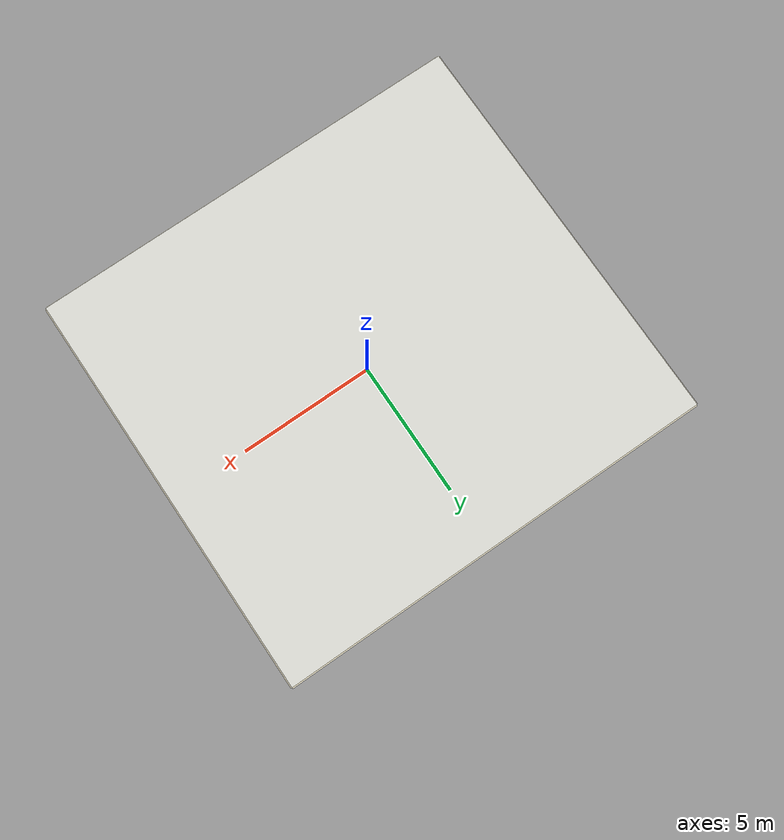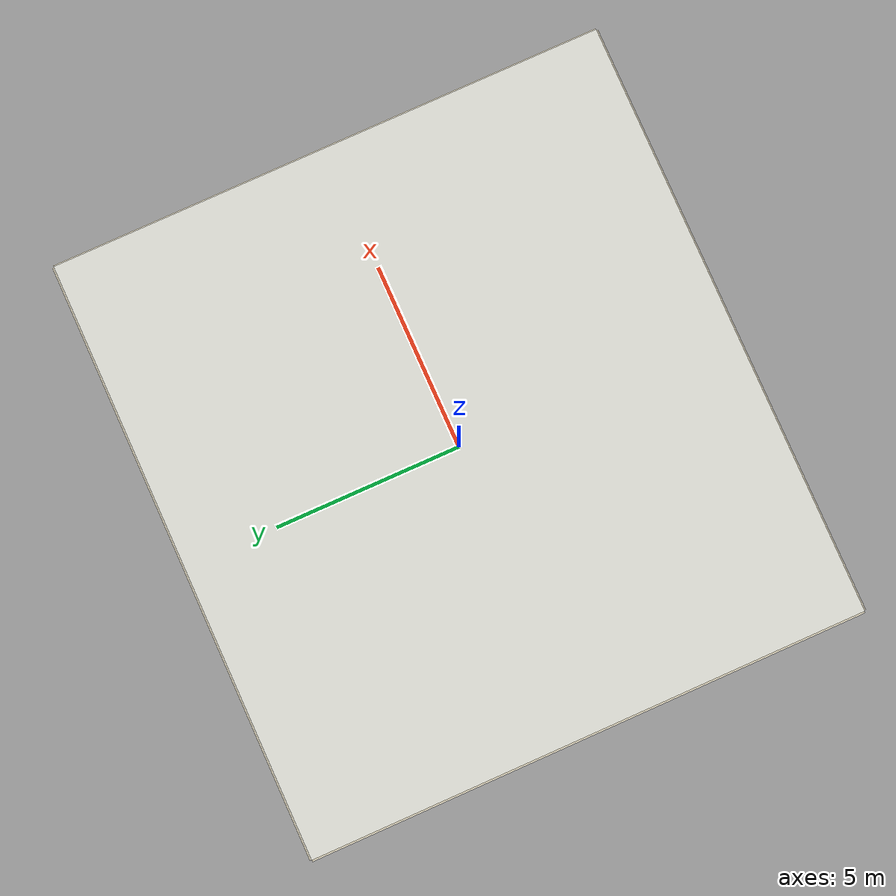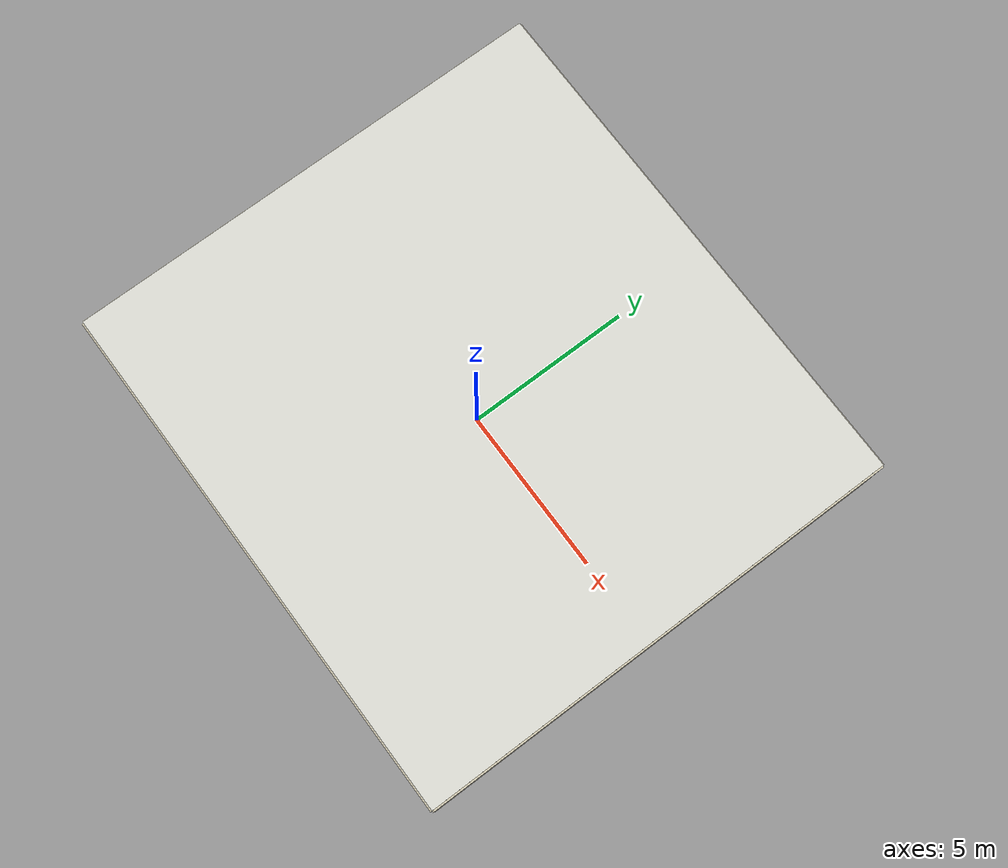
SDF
<?xml version="1.0" ?>
<sdf version='1.7'>
  <world name='default'>
    <plugin name='gazebo_ros_state' filename='libgazebo_ros_state.so'>
      <ros>
        <namespace>/</namespace>
      </ros>
      <update_rate>1000.0</update_rate>
    </plugin>

    <light name='sun' type='directional'>
      <cast_shadows>1</cast_shadows>
      <pose>0 0 10 0 -0 0</pose>
      <diffuse>0.32 0.32 0.31 1</diffuse>
      <specular>0.2 0.2 0.2 1</specular>
      <attenuation>
        <range>1000</range>
        <constant>0.9</constant>
        <linear>0.01</linear>
        <quadratic>0.001</quadratic>
      </attenuation>
      <direction>0.05 0.02 -1.0</direction>
      <spot>
        <inner_angle>0</inner_angle>
        <outer_angle>0</outer_angle>
        <falloff>0</falloff>
      </spot>
    </light>
    <model name='ground_plane'>
      <static>1</static>
      <link name='link'>
        <collision name='collision'>
          <geometry>
            <plane>
              <normal>0 0 1</normal>
              <size>100 100</size>
            </plane>
          </geometry>
          <surface>
            <friction>
              <ode>
                <mu>100</mu>
                <mu2>50</mu2>
              </ode>
              <torsional>
                <ode/>
              </torsional>
            </friction>
            <contact>
              <ode/>
            </contact>
            <bounce/>
          </surface>
          <max_contacts>10</max_contacts>
        </collision>
        <self_collide>0</self_collide>
        <enable_wind>0</enable_wind>
        <kinematic>0</kinematic>
      </link>
    </model>
    <gravity>0 0 -9.8</gravity>
    <magnetic_field>6e-06 2.3e-05 -4.2e-05</magnetic_field>
    <atmosphere type='adiabatic'/>
    <physics type='ode'>
      <max_step_size>0.001</max_step_size>
      <real_time_factor>1</real_time_factor>
      <real_time_update_rate>1000</real_time_update_rate>
    </physics>
    <scene>
      <ambient>0.68 0.68 0.66 1</ambient>
      <background>0.80 0.77 0.68 1</background>
      <shadows>1</shadows>
    </scene>
    <audio>
      <device>default</device>
    </audio>
    <wind/>
    <spherical_coordinates>
      <surface_model>EARTH_WGS84</surface_model>
      <latitude_deg>0</latitude_deg>
      <longitude_deg>0</longitude_deg>
      <elevation>0</elevation>
      <heading_deg>0</heading_deg>
    </spherical_coordinates>
    <model name='lab_17'>
    <static>1</static>
    <pose>0 0 0.001 0 0 0</pose>
    <link name='floor'>
      <visual name='floor_visual'>
        <cast_shadows>0</cast_shadows>
        <geometry><mesh><uri>model://lab_17/meshes/floor.obj</uri></mesh></geometry>
      </visual>
    </link>
    <link name='ducts'>
      <visual name='ducts_visual'>
        <geometry><mesh><uri>model://lab_17/meshes/ducts.obj</uri></mesh></geometry>
      </visual>
      <collision name='ducts_collision'>
        <geometry><mesh><uri>model://lab_17/meshes/ducts.obj</uri></mesh></geometry>
      </collision>
    </link>
    <link name='wall_0'>
      <pose>-0.017 7.280 1.350 0 0 0.000</pose>
      <visual name='wall_0_visual'>
        <cast_shadows>0</cast_shadows>
        <geometry><box><size>15.514 0.100 2.700</size></box></geometry>
        <material><ambient>0.80 0.77 0.68 1</ambient><diffuse>0.80 0.77 0.68 1</diffuse></material>
      </visual>
    </link>
    <link name='wall_1'>
      <pose>-0.017 -7.116 1.350 0 0 0.000</pose>
      <visual name='wall_1_visual'>
        <cast_shadows>0</cast_shadows>
        <geometry><box><size>15.514 0.100 2.700</size></box></geometry>
        <material><ambient>0.80 0.77 0.68 1</ambient><diffuse>0.80 0.77 0.68 1</diffuse></material>
      </visual>
    </link>
    <link name='wall_2'>
      <pose>-7.774 0.082 1.350 0 0 0.000</pose>
      <visual name='wall_2_visual'>
        <cast_shadows>0</cast_shadows>
        <geometry><box><size>0.100 14.396 2.700</size></box></geometry>
        <material><ambient>0.80 0.77 0.68 1</ambient><diffuse>0.80 0.77 0.68 1</diffuse></material>
      </visual>
    </link>
    <link name='wall_3'>
      <pose>7.740 0.082 1.350 0 0 0.000</pose>
      <visual name='wall_3_visual'>
        <cast_shadows>0</cast_shadows>
        <geometry><box><size>0.100 14.396 2.700</size></box></geometry>
        <material><ambient>0.80 0.77 0.68 1</ambient><diffuse>0.80 0.77 0.68 1</diffuse></material>
      </visual>
    </link>
    <link name='ceiling'>
      <pose>-0.017 0.082 2.750 0 0 0.000</pose>
      <visual name='ceiling_visual'>
        <cast_shadows>0</cast_shadows>
        <geometry><box><size>15.514 14.396 0.100</size></box></geometry>
        <material><ambient>0.85 0.85 0.82 1</ambient><diffuse>0.85 0.85 0.82 1</diffuse></material>
      </visual>
    </link>
    <link name='panel_0_0'>
      <pose>-6.274 -5.616 2.690 0 0 0.000</pose>
      <visual name='panel_0_0_visual'>
        <cast_shadows>0</cast_shadows>
        <geometry><box><size>1.200 0.600 0.020</size></box></geometry>
        <material><ambient>1.00 1.00 1.00 1</ambient><diffuse>1.00 1.00 1.00 1</diffuse><emissive>1.00 1.00 1.00 1</emissive></material>
      </visual>
    </link>
    <link name='panel_0_1'>
      <pose>-6.274 -3.216 2.690 0 0 0.000</pose>
      <visual name='panel_0_1_visual'>
        <cast_shadows>0</cast_shadows>
        <geometry><box><size>1.200 0.600 0.020</size></box></geometry>
        <material><ambient>1.00 1.00 1.00 1</ambient><diffuse>1.00 1.00 1.00 1</diffuse><emissive>1.00 1.00 1.00 1</emissive></material>
      </visual>
    </link>
    <link name='panel_0_2'>
      <pose>-6.274 -0.816 2.690 0 0 0.000</pose>
      <visual name='panel_0_2_visual'>
        <cast_shadows>0</cast_shadows>
        <geometry><box><size>1.200 0.600 0.020</size></box></geometry>
        <material><ambient>1.00 1.00 1.00 1</ambient><diffuse>1.00 1.00 1.00 1</diffuse><emissive>1.00 1.00 1.00 1</emissive></material>
      </visual>
    </link>
    <link name='panel_0_3'>
      <pose>-6.274 1.584 2.690 0 0 0.000</pose>
      <visual name='panel_0_3_visual'>
        <cast_shadows>0</cast_shadows>
        <geometry><box><size>1.200 0.600 0.020</size></box></geometry>
        <material><ambient>1.00 1.00 1.00 1</ambient><diffuse>1.00 1.00 1.00 1</diffuse><emissive>1.00 1.00 1.00 1</emissive></material>
      </visual>
    </link>
    <link name='panel_0_4'>
      <pose>-6.274 3.984 2.690 0 0 0.000</pose>
      <visual name='panel_0_4_visual'>
        <cast_shadows>0</cast_shadows>
        <geometry><box><size>1.200 0.600 0.020</size></box></geometry>
        <material><ambient>1.00 1.00 1.00 1</ambient><diffuse>1.00 1.00 1.00 1</diffuse><emissive>1.00 1.00 1.00 1</emissive></material>
      </visual>
    </link>
    <link name='panel_1_0'>
      <pose>-3.874 -5.616 2.690 0 0 0.000</pose>
      <visual name='panel_1_0_visual'>
        <cast_shadows>0</cast_shadows>
        <geometry><box><size>1.200 0.600 0.020</size></box></geometry>
        <material><ambient>1.00 1.00 1.00 1</ambient><diffuse>1.00 1.00 1.00 1</diffuse><emissive>1.00 1.00 1.00 1</emissive></material>
      </visual>
    </link>
    <link name='panel_1_1'>
      <pose>-3.874 -3.216 2.690 0 0 0.000</pose>
      <visual name='panel_1_1_visual'>
        <cast_shadows>0</cast_shadows>
        <geometry><box><size>1.200 0.600 0.020</size></box></geometry>
        <material><ambient>1.00 1.00 1.00 1</ambient><diffuse>1.00 1.00 1.00 1</diffuse><emissive>1.00 1.00 1.00 1</emissive></material>
      </visual>
    </link>
    <link name='panel_1_2'>
      <pose>-3.874 -0.816 2.690 0 0 0.000</pose>
      <visual name='panel_1_2_visual'>
        <cast_shadows>0</cast_shadows>
        <geometry><box><size>1.200 0.600 0.020</size></box></geometry>
        <material><ambient>1.00 1.00 1.00 1</ambient><diffuse>1.00 1.00 1.00 1</diffuse><emissive>1.00 1.00 1.00 1</emissive></material>
      </visual>
    </link>
    <link name='panel_1_3'>
      <pose>-3.874 1.584 2.690 0 0 0.000</pose>
      <visual name='panel_1_3_visual'>
        <cast_shadows>0</cast_shadows>
        <geometry><box><size>1.200 0.600 0.020</size></box></geometry>
        <material><ambient>1.00 1.00 1.00 1</ambient><diffuse>1.00 1.00 1.00 1</diffuse><emissive>1.00 1.00 1.00 1</emissive></material>
      </visual>
    </link>
    <link name='panel_1_4'>
      <pose>-3.874 3.984 2.690 0 0 0.000</pose>
      <visual name='panel_1_4_visual'>
        <cast_shadows>0</cast_shadows>
        <geometry><box><size>1.200 0.600 0.020</size></box></geometry>
        <material><ambient>1.00 1.00 1.00 1</ambient><diffuse>1.00 1.00 1.00 1</diffuse><emissive>1.00 1.00 1.00 1</emissive></material>
      </visual>
    </link>
    <link name='panel_2_0'>
      <pose>-1.474 -5.616 2.690 0 0 0.000</pose>
      <visual name='panel_2_0_visual'>
        <cast_shadows>0</cast_shadows>
        <geometry><box><size>1.200 0.600 0.020</size></box></geometry>
        <material><ambient>1.00 1.00 1.00 1</ambient><diffuse>1.00 1.00 1.00 1</diffuse><emissive>1.00 1.00 1.00 1</emissive></material>
      </visual>
    </link>
    <link name='panel_2_1'>
      <pose>-1.474 -3.216 2.690 0 0 0.000</pose>
      <visual name='panel_2_1_visual'>
        <cast_shadows>0</cast_shadows>
        <geometry><box><size>1.200 0.600 0.020</size></box></geometry>
        <material><ambient>1.00 1.00 1.00 1</ambient><diffuse>1.00 1.00 1.00 1</diffuse><emissive>1.00 1.00 1.00 1</emissive></material>
      </visual>
    </link>
    <link name='panel_2_2'>
      <pose>-1.474 -0.816 2.690 0 0 0.000</pose>
      <visual name='panel_2_2_visual'>
        <cast_shadows>0</cast_shadows>
        <geometry><box><size>1.200 0.600 0.020</size></box></geometry>
        <material><ambient>1.00 1.00 1.00 1</ambient><diffuse>1.00 1.00 1.00 1</diffuse><emissive>1.00 1.00 1.00 1</emissive></material>
      </visual>
    </link>
    <link name='panel_2_3'>
      <pose>-1.474 1.584 2.690 0 0 0.000</pose>
      <visual name='panel_2_3_visual'>
        <cast_shadows>0</cast_shadows>
        <geometry><box><size>1.200 0.600 0.020</size></box></geometry>
        <material><ambient>1.00 1.00 1.00 1</ambient><diffuse>1.00 1.00 1.00 1</diffuse><emissive>1.00 1.00 1.00 1</emissive></material>
      </visual>
    </link>
    <link name='panel_2_4'>
      <pose>-1.474 3.984 2.690 0 0 0.000</pose>
      <visual name='panel_2_4_visual'>
        <cast_shadows>0</cast_shadows>
        <geometry><box><size>1.200 0.600 0.020</size></box></geometry>
        <material><ambient>1.00 1.00 1.00 1</ambient><diffuse>1.00 1.00 1.00 1</diffuse><emissive>1.00 1.00 1.00 1</emissive></material>
      </visual>
    </link>
    <link name='panel_3_0'>
      <pose>0.926 -5.616 2.690 0 0 0.000</pose>
      <visual name='panel_3_0_visual'>
        <cast_shadows>0</cast_shadows>
        <geometry><box><size>1.200 0.600 0.020</size></box></geometry>
        <material><ambient>1.00 1.00 1.00 1</ambient><diffuse>1.00 1.00 1.00 1</diffuse><emissive>1.00 1.00 1.00 1</emissive></material>
      </visual>
    </link>
    <link name='panel_3_1'>
      <pose>0.926 -3.216 2.690 0 0 0.000</pose>
      <visual name='panel_3_1_visual'>
        <cast_shadows>0</cast_shadows>
        <geometry><box><size>1.200 0.600 0.020</size></box></geometry>
        <material><ambient>1.00 1.00 1.00 1</ambient><diffuse>1.00 1.00 1.00 1</diffuse><emissive>1.00 1.00 1.00 1</emissive></material>
      </visual>
    </link>
    <link name='panel_3_2'>
      <pose>0.926 -0.816 2.690 0 0 0.000</pose>
      <visual name='panel_3_2_visual'>
        <cast_shadows>0</cast_shadows>
        <geometry><box><size>1.200 0.600 0.020</size></box></geometry>
        <material><ambient>1.00 1.00 1.00 1</ambient><diffuse>1.00 1.00 1.00 1</diffuse><emissive>1.00 1.00 1.00 1</emissive></material>
      </visual>
    </link>
    <link name='panel_3_3'>
      <pose>0.926 1.584 2.690 0 0 0.000</pose>
      <visual name='panel_3_3_visual'>
        <cast_shadows>0</cast_shadows>
        <geometry><box><size>1.200 0.600 0.020</size></box></geometry>
        <material><ambient>1.00 1.00 1.00 1</ambient><diffuse>1.00 1.00 1.00 1</diffuse><emissive>1.00 1.00 1.00 1</emissive></material>
      </visual>
    </link>
    <link name='panel_3_4'>
      <pose>0.926 3.984 2.690 0 0 0.000</pose>
      <visual name='panel_3_4_visual'>
        <cast_shadows>0</cast_shadows>
        <geometry><box><size>1.200 0.600 0.020</size></box></geometry>
        <material><ambient>1.00 1.00 1.00 1</ambient><diffuse>1.00 1.00 1.00 1</diffuse><emissive>1.00 1.00 1.00 1</emissive></material>
      </visual>
    </link>
    <link name='panel_4_0'>
      <pose>3.326 -5.616 2.690 0 0 0.000</pose>
      <visual name='panel_4_0_visual'>
        <cast_shadows>0</cast_shadows>
        <geometry><box><size>1.200 0.600 0.020</size></box></geometry>
        <material><ambient>1.00 1.00 1.00 1</ambient><diffuse>1.00 1.00 1.00 1</diffuse><emissive>1.00 1.00 1.00 1</emissive></material>
      </visual>
    </link>
    <link name='panel_4_1'>
      <pose>3.326 -3.216 2.690 0 0 0.000</pose>
      <visual name='panel_4_1_visual'>
        <cast_shadows>0</cast_shadows>
        <geometry><box><size>1.200 0.600 0.020</size></box></geometry>
        <material><ambient>1.00 1.00 1.00 1</ambient><diffuse>1.00 1.00 1.00 1</diffuse><emissive>1.00 1.00 1.00 1</emissive></material>
      </visual>
    </link>
    <link name='panel_4_2'>
      <pose>3.326 -0.816 2.690 0 0 0.000</pose>
      <visual name='panel_4_2_visual'>
        <cast_shadows>0</cast_shadows>
        <geometry><box><size>1.200 0.600 0.020</size></box></geometry>
        <material><ambient>1.00 1.00 1.00 1</ambient><diffuse>1.00 1.00 1.00 1</diffuse><emissive>1.00 1.00 1.00 1</emissive></material>
      </visual>
    </link>
    <link name='panel_4_3'>
      <pose>3.326 1.584 2.690 0 0 0.000</pose>
      <visual name='panel_4_3_visual'>
        <cast_shadows>0</cast_shadows>
        <geometry><box><size>1.200 0.600 0.020</size></box></geometry>
        <material><ambient>1.00 1.00 1.00 1</ambient><diffuse>1.00 1.00 1.00 1</diffuse><emissive>1.00 1.00 1.00 1</emissive></material>
      </visual>
    </link>
    <link name='panel_4_4'>
      <pose>3.326 3.984 2.690 0 0 0.000</pose>
      <visual name='panel_4_4_visual'>
        <cast_shadows>0</cast_shadows>
        <geometry><box><size>1.200 0.600 0.020</size></box></geometry>
        <material><ambient>1.00 1.00 1.00 1</ambient><diffuse>1.00 1.00 1.00 1</diffuse><emissive>1.00 1.00 1.00 1</emissive></material>
      </visual>
    </link>
    <link name='panel_5_0'>
      <pose>5.726 -5.616 2.690 0 0 0.000</pose>
      <visual name='panel_5_0_visual'>
        <cast_shadows>0</cast_shadows>
        <geometry><box><size>1.200 0.600 0.020</size></box></geometry>
        <material><ambient>1.00 1.00 1.00 1</ambient><diffuse>1.00 1.00 1.00 1</diffuse><emissive>1.00 1.00 1.00 1</emissive></material>
      </visual>
    </link>
    <link name='panel_5_1'>
      <pose>5.726 -3.216 2.690 0 0 0.000</pose>
      <visual name='panel_5_1_visual'>
        <cast_shadows>0</cast_shadows>
        <geometry><box><size>1.200 0.600 0.020</size></box></geometry>
        <material><ambient>1.00 1.00 1.00 1</ambient><diffuse>1.00 1.00 1.00 1</diffuse><emissive>1.00 1.00 1.00 1</emissive></material>
      </visual>
    </link>
    <link name='panel_5_2'>
      <pose>5.726 -0.816 2.690 0 0 0.000</pose>
      <visual name='panel_5_2_visual'>
        <cast_shadows>0</cast_shadows>
        <geometry><box><size>1.200 0.600 0.020</size></box></geometry>
        <material><ambient>1.00 1.00 1.00 1</ambient><diffuse>1.00 1.00 1.00 1</diffuse><emissive>1.00 1.00 1.00 1</emissive></material>
      </visual>
    </link>
    <link name='panel_5_3'>
      <pose>5.726 1.584 2.690 0 0 0.000</pose>
      <visual name='panel_5_3_visual'>
        <cast_shadows>0</cast_shadows>
        <geometry><box><size>1.200 0.600 0.020</size></box></geometry>
        <material><ambient>1.00 1.00 1.00 1</ambient><diffuse>1.00 1.00 1.00 1</diffuse><emissive>1.00 1.00 1.00 1</emissive></material>
      </visual>
    </link>
    <link name='panel_5_4'>
      <pose>5.726 3.984 2.690 0 0 0.000</pose>
      <visual name='panel_5_4_visual'>
        <cast_shadows>0</cast_shadows>
        <geometry><box><size>1.200 0.600 0.020</size></box></geometry>
        <material><ambient>1.00 1.00 1.00 1</ambient><diffuse>1.00 1.00 1.00 1</diffuse><emissive>1.00 1.00 1.00 1</emissive></material>
      </visual>
    </link>
    <link name='p0'>
      <pose>-5.331 6.970 0.650 0 0 0.000</pose>
      <visual name='p0_visual'>
        <cast_shadows>0</cast_shadows>
        <geometry><box><size>0.900 0.500 1.300</size></box></geometry>
        <material><ambient>0.25 0.33 0.36 1</ambient><diffuse>0.25 0.33 0.36 1</diffuse></material>
      </visual>
    </link>
    <link name='p1'>
      <pose>-3.827 6.845 0.375 0 0 0.000</pose>
      <visual name='p1_visual'>
        <cast_shadows>0</cast_shadows>
        <geometry><box><size>1.500 0.750 0.750</size></box></geometry>
        <material><ambient>0.32 0.32 0.33 1</ambient><diffuse>0.32 0.32 0.33 1</diffuse></material>
      </visual>
    </link>
    <link name='p2'>
      <pose>-1.818 6.970 0.650 0 0 0.000</pose>
      <visual name='p2_visual'>
        <cast_shadows>0</cast_shadows>
        <geometry><box><size>0.900 0.500 1.300</size></box></geometry>
        <material><ambient>0.25 0.33 0.36 1</ambient><diffuse>0.25 0.33 0.36 1</diffuse></material>
      </visual>
    </link>
    <link name='p3'>
      <pose>0.431 6.845 0.375 0 0 0.000</pose>
      <visual name='p3_visual'>
        <cast_shadows>0</cast_shadows>
        <geometry><box><size>1.500 0.750 0.750</size></box></geometry>
        <material><ambient>0.32 0.32 0.33 1</ambient><diffuse>0.32 0.32 0.33 1</diffuse></material>
      </visual>
    </link>
    <link name='p4'>
      <pose>2.366 6.845 0.375 0 0 0.000</pose>
      <visual name='p4_visual'>
        <cast_shadows>0</cast_shadows>
        <geometry><box><size>1.500 0.750 0.750</size></box></geometry>
        <material><ambient>0.32 0.32 0.33 1</ambient><diffuse>0.32 0.32 0.33 1</diffuse></material>
      </visual>
    </link>
    <link name='p5'>
      <pose>5.386 6.970 0.650 0 0 0.000</pose>
      <visual name='p5_visual'>
        <cast_shadows>0</cast_shadows>
        <geometry><box><size>0.900 0.500 1.300</size></box></geometry>
        <material><ambient>0.25 0.33 0.36 1</ambient><diffuse>0.25 0.33 0.36 1</diffuse></material>
      </visual>
    </link>
    <link name='p6'>
      <pose>7.430 -4.595 0.650 0 0 0.000</pose>
      <visual name='p6_visual'>
        <cast_shadows>0</cast_shadows>
        <geometry><box><size>0.500 0.900 1.300</size></box></geometry>
        <material><ambient>0.25 0.33 0.36 1</ambient><diffuse>0.25 0.33 0.36 1</diffuse></material>
      </visual>
    </link>
    <link name='p7'>
      <pose>7.430 -3.079 0.225 0 0 0.000</pose>
      <visual name='p7_visual'>
        <cast_shadows>0</cast_shadows>
        <geometry><box><size>0.500 0.600 0.450</size></box></geometry>
        <material><ambient>0.62 0.45 0.28 1</ambient><diffuse>0.62 0.45 0.28 1</diffuse></material>
      </visual>
    </link>
    <link name='p8'>
      <pose>7.430 -3.079 0.675 0 0 0.000</pose>
      <visual name='p8_visual'>
        <cast_shadows>0</cast_shadows>
        <geometry><box><size>0.500 0.600 0.450</size></box></geometry>
        <material><ambient>0.62 0.45 0.28 1</ambient><diffuse>0.62 0.45 0.28 1</diffuse></material>
      </visual>
    </link>
    <link name='p9'>
      <pose>7.430 -1.658 0.650 0 0 0.000</pose>
      <visual name='p9_visual'>
        <cast_shadows>0</cast_shadows>
        <geometry><box><size>0.500 0.900 1.300</size></box></geometry>
        <material><ambient>0.25 0.33 0.36 1</ambient><diffuse>0.25 0.33 0.36 1</diffuse></material>
      </visual>
    </link>
    <link name='p10'>
      <pose>7.430 0.727 0.225 0 0 0.000</pose>
      <visual name='p10_visual'>
        <cast_shadows>0</cast_shadows>
        <geometry><box><size>0.500 0.600 0.450</size></box></geometry>
        <material><ambient>0.62 0.45 0.28 1</ambient><diffuse>0.62 0.45 0.28 1</diffuse></material>
      </visual>
    </link>
    <link name='p11'>
      <pose>7.430 0.727 0.675 0 0 0.000</pose>
      <visual name='p11_visual'>
        <cast_shadows>0</cast_shadows>
        <geometry><box><size>0.500 0.600 0.450</size></box></geometry>
        <material><ambient>0.62 0.45 0.28 1</ambient><diffuse>0.62 0.45 0.28 1</diffuse></material>
      </visual>
    </link>
    <link name='p12'>
      <pose>7.430 1.968 0.650 0 0 0.000</pose>
      <visual name='p12_visual'>
        <cast_shadows>0</cast_shadows>
        <geometry><box><size>0.500 0.900 1.300</size></box></geometry>
        <material><ambient>0.25 0.33 0.36 1</ambient><diffuse>0.25 0.33 0.36 1</diffuse></material>
      </visual>
    </link>
    <link name='p13'>
      <pose>7.430 4.053 0.650 0 0 0.000</pose>
      <visual name='p13_visual'>
        <cast_shadows>0</cast_shadows>
        <geometry><box><size>0.500 0.900 1.300</size></box></geometry>
        <material><ambient>0.25 0.33 0.36 1</ambient><diffuse>0.25 0.33 0.36 1</diffuse></material>
      </visual>
    </link>
    <link name='p14'>
      <pose>-4.752 -6.806 0.650 0 0 0.000</pose>
      <visual name='p14_visual'>
        <cast_shadows>0</cast_shadows>
        <geometry><box><size>0.900 0.500 1.300</size></box></geometry>
        <material><ambient>0.25 0.33 0.36 1</ambient><diffuse>0.25 0.33 0.36 1</diffuse></material>
      </visual>
    </link>
    <link name='p15'>
      <pose>-3.300 -6.831 0.925 0 0 0.000</pose>
      <visual name='p15_visual'>
        <cast_shadows>0</cast_shadows>
        <geometry><box><size>0.300 0.450 1.850</size></box></geometry>
        <material><ambient>0.55 0.57 0.58 1</ambient><diffuse>0.55 0.57 0.58 1</diffuse></material>
      </visual>
    </link>
    <link name='p16'>
      <pose>-2.990 -6.831 0.925 0 0 0.000</pose>
      <visual name='p16_visual'>
        <cast_shadows>0</cast_shadows>
        <geometry><box><size>0.300 0.450 1.850</size></box></geometry>
        <material><ambient>0.55 0.57 0.58 1</ambient><diffuse>0.55 0.57 0.58 1</diffuse></material>
      </visual>
    </link>
    <link name='p17'>
      <pose>-2.680 -6.831 0.925 0 0 0.000</pose>
      <visual name='p17_visual'>
        <cast_shadows>0</cast_shadows>
        <geometry><box><size>0.300 0.450 1.850</size></box></geometry>
        <material><ambient>0.55 0.57 0.58 1</ambient><diffuse>0.55 0.57 0.58 1</diffuse></material>
      </visual>
    </link>
    <link name='p18'>
      <pose>-2.370 -6.831 0.925 0 0 0.000</pose>
      <visual name='p18_visual'>
        <cast_shadows>0</cast_shadows>
        <geometry><box><size>0.300 0.450 1.850</size></box></geometry>
        <material><ambient>0.55 0.57 0.58 1</ambient><diffuse>0.55 0.57 0.58 1</diffuse></material>
      </visual>
    </link>
    <link name='p19'>
      <pose>-2.060 -6.831 0.925 0 0 0.000</pose>
      <visual name='p19_visual'>
        <cast_shadows>0</cast_shadows>
        <geometry><box><size>0.300 0.450 1.850</size></box></geometry>
        <material><ambient>0.55 0.57 0.58 1</ambient><diffuse>0.55 0.57 0.58 1</diffuse></material>
      </visual>
    </link>
    <link name='p20'>
      <pose>-1.406 -6.831 0.925 0 0 0.000</pose>
      <visual name='p20_visual'>
        <cast_shadows>0</cast_shadows>
        <geometry><box><size>0.300 0.450 1.850</size></box></geometry>
        <material><ambient>0.55 0.57 0.58 1</ambient><diffuse>0.55 0.57 0.58 1</diffuse></material>
      </visual>
    </link>
    <link name='p21'>
      <pose>-1.096 -6.831 0.925 0 0 0.000</pose>
      <visual name='p21_visual'>
        <cast_shadows>0</cast_shadows>
        <geometry><box><size>0.300 0.450 1.850</size></box></geometry>
        <material><ambient>0.55 0.57 0.58 1</ambient><diffuse>0.55 0.57 0.58 1</diffuse></material>
      </visual>
    </link>
    <link name='p22'>
      <pose>-0.786 -6.831 0.925 0 0 0.000</pose>
      <visual name='p22_visual'>
        <cast_shadows>0</cast_shadows>
        <geometry><box><size>0.300 0.450 1.850</size></box></geometry>
        <material><ambient>0.55 0.57 0.58 1</ambient><diffuse>0.55 0.57 0.58 1</diffuse></material>
      </visual>
    </link>
    <link name='p23'>
      <pose>-0.476 -6.831 0.925 0 0 0.000</pose>
      <visual name='p23_visual'>
        <cast_shadows>0</cast_shadows>
        <geometry><box><size>0.300 0.450 1.850</size></box></geometry>
        <material><ambient>0.55 0.57 0.58 1</ambient><diffuse>0.55 0.57 0.58 1</diffuse></material>
      </visual>
    </link>
    <link name='p24'>
      <pose>-0.166 -6.831 0.925 0 0 0.000</pose>
      <visual name='p24_visual'>
        <cast_shadows>0</cast_shadows>
        <geometry><box><size>0.300 0.450 1.850</size></box></geometry>
        <material><ambient>0.55 0.57 0.58 1</ambient><diffuse>0.55 0.57 0.58 1</diffuse></material>
      </visual>
    </link>
    <link name='p25'>
      <pose>0.144 -6.831 0.925 0 0 0.000</pose>
      <visual name='p25_visual'>
        <cast_shadows>0</cast_shadows>
        <geometry><box><size>0.300 0.450 1.850</size></box></geometry>
        <material><ambient>0.55 0.57 0.58 1</ambient><diffuse>0.55 0.57 0.58 1</diffuse></material>
      </visual>
    </link>
    <link name='p26'>
      <pose>0.767 -6.806 0.650 0 0 0.000</pose>
      <visual name='p26_visual'>
        <cast_shadows>0</cast_shadows>
        <geometry><box><size>0.900 0.500 1.300</size></box></geometry>
        <material><ambient>0.25 0.33 0.36 1</ambient><diffuse>0.25 0.33 0.36 1</diffuse></material>
      </visual>
    </link>
    <link name='p27'>
      <pose>2.324 -6.806 0.225 0 0 0.000</pose>
      <visual name='p27_visual'>
        <cast_shadows>0</cast_shadows>
        <geometry><box><size>0.600 0.500 0.450</size></box></geometry>
        <material><ambient>0.62 0.45 0.28 1</ambient><diffuse>0.62 0.45 0.28 1</diffuse></material>
      </visual>
    </link>
    <link name='p28'>
      <pose>2.324 -6.806 0.675 0 0 0.000</pose>
      <visual name='p28_visual'>
        <cast_shadows>0</cast_shadows>
        <geometry><box><size>0.600 0.500 0.450</size></box></geometry>
        <material><ambient>0.62 0.45 0.28 1</ambient><diffuse>0.62 0.45 0.28 1</diffuse></material>
      </visual>
    </link>
    <link name='p29'>
      <pose>2.324 -6.806 1.125 0 0 0.000</pose>
      <visual name='p29_visual'>
        <cast_shadows>0</cast_shadows>
        <geometry><box><size>0.600 0.500 0.450</size></box></geometry>
        <material><ambient>0.62 0.45 0.28 1</ambient><diffuse>0.62 0.45 0.28 1</diffuse></material>
      </visual>
    </link>
    <link name='p30'>
      <pose>3.675 -7.031 0.375 0 0 0.000</pose>
      <visual name='p30_visual'>
        <cast_shadows>0</cast_shadows>
        <geometry><box><size>1.800 0.050 0.750</size></box></geometry>
        <material><ambient>0.93 0.93 0.92 1</ambient><diffuse>0.93 0.93 0.92 1</diffuse></material>
      </visual>
    </link>
    <link name='p31'>
      <pose>-7.489 -4.275 0.925 0 0 0.000</pose>
      <visual name='p31_visual'>
        <cast_shadows>0</cast_shadows>
        <geometry><box><size>0.450 0.300 1.850</size></box></geometry>
        <material><ambient>0.55 0.57 0.58 1</ambient><diffuse>0.55 0.57 0.58 1</diffuse></material>
      </visual>
    </link>
    <link name='p32'>
      <pose>-7.489 -3.965 0.925 0 0 0.000</pose>
      <visual name='p32_visual'>
        <cast_shadows>0</cast_shadows>
        <geometry><box><size>0.450 0.300 1.850</size></box></geometry>
        <material><ambient>0.55 0.57 0.58 1</ambient><diffuse>0.55 0.57 0.58 1</diffuse></material>
      </visual>
    </link>
    <link name='p33'>
      <pose>-7.489 -3.655 0.925 0 0 0.000</pose>
      <visual name='p33_visual'>
        <cast_shadows>0</cast_shadows>
        <geometry><box><size>0.450 0.300 1.850</size></box></geometry>
        <material><ambient>0.55 0.57 0.58 1</ambient><diffuse>0.55 0.57 0.58 1</diffuse></material>
      </visual>
    </link>
    <link name='p34'>
      <pose>-7.489 -3.345 0.925 0 0 0.000</pose>
      <visual name='p34_visual'>
        <cast_shadows>0</cast_shadows>
        <geometry><box><size>0.450 0.300 1.850</size></box></geometry>
        <material><ambient>0.55 0.57 0.58 1</ambient><diffuse>0.55 0.57 0.58 1</diffuse></material>
      </visual>
    </link>
    <link name='p35'>
      <pose>-7.489 -3.035 0.925 0 0 0.000</pose>
      <visual name='p35_visual'>
        <cast_shadows>0</cast_shadows>
        <geometry><box><size>0.450 0.300 1.850</size></box></geometry>
        <material><ambient>0.55 0.57 0.58 1</ambient><diffuse>0.55 0.57 0.58 1</diffuse></material>
      </visual>
    </link>
    <link name='p36'>
      <pose>-7.489 -2.725 0.925 0 0 0.000</pose>
      <visual name='p36_visual'>
        <cast_shadows>0</cast_shadows>
        <geometry><box><size>0.450 0.300 1.850</size></box></geometry>
        <material><ambient>0.55 0.57 0.58 1</ambient><diffuse>0.55 0.57 0.58 1</diffuse></material>
      </visual>
    </link>
    <link name='p37'>
      <pose>-7.464 3.694 0.650 0 0 0.000</pose>
      <visual name='p37_visual'>
        <cast_shadows>0</cast_shadows>
        <geometry><box><size>0.500 0.900 1.300</size></box></geometry>
        <material><ambient>0.25 0.33 0.36 1</ambient><diffuse>0.25 0.33 0.36 1</diffuse></material>
      </visual>
    </link>
    <link name='p38'>
      <pose>-7.464 5.115 0.650 0 0 0.000</pose>
      <visual name='p38_visual'>
        <cast_shadows>0</cast_shadows>
        <geometry><box><size>0.500 0.900 1.300</size></box></geometry>
        <material><ambient>0.25 0.33 0.36 1</ambient><diffuse>0.25 0.33 0.36 1</diffuse></material>
      </visual>
    </link>
  </model>
  </world>
</sdf>
